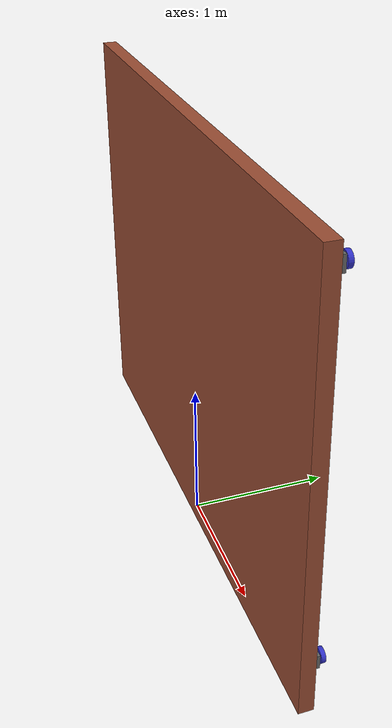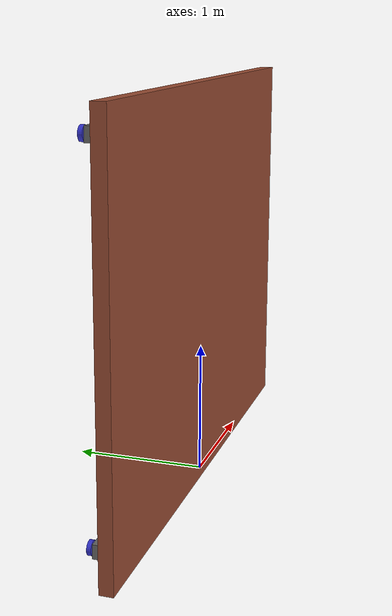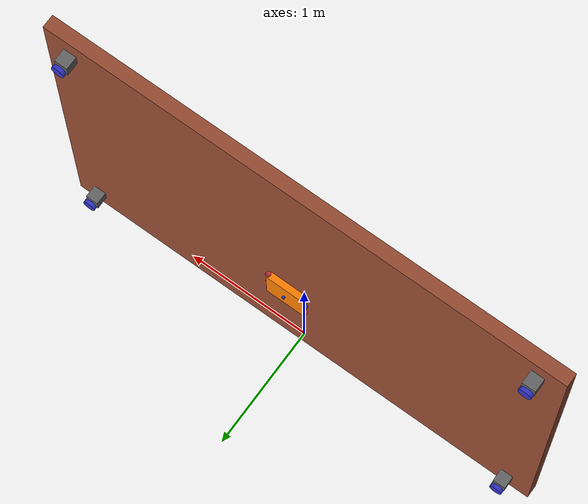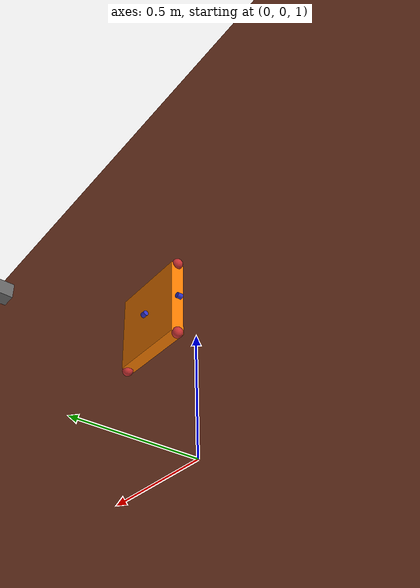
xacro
<?xml version="1.0"?>
<robot name="cable_robot" xmlns:xacro="http://www.ros.org/wiki/xacro">

  <!-- ============ PARAMETERS ============ -->
  <xacro:property name="wall_width" value="4.0"/>
  <xacro:property name="wall_height" value="3.0"/>
  <xacro:property name="wall_thickness" value="0.1"/>

  <xacro:property name="pulley_radius" value="0.05"/>
  <xacro:property name="pulley_thickness" value="0.03"/>
  <xacro:property name="mount_size" value="0.1"/>

  <xacro:property name="platform_size" value="0.3"/>
  <xacro:property name="platform_thickness" value="0.05"/>
  <xacro:property name="platform_mass" value="2.0"/>

  <xacro:property name="cable_radius" value="0.005"/>

  <!-- Pulley corner offsets from wall center -->
  <xacro:property name="pulley_x_offset" value="${wall_width/2 - 0.2}"/>
  <xacro:property name="pulley_z_offset" value="${wall_height/2 - 0.2}"/>

  <!-- Platform corner offsets -->
  <xacro:property name="platform_corner" value="${platform_size/2}"/>

  <!-- ============ WORLD & BASE ============ -->
  <link name="world"/>

  <link name="base_link">
    <inertial>
      <mass value="0.001"/>
      <inertia ixx="0.0001" ixy="0.0" ixz="0.0" iyy="0.0001" iyz="0.0" izz="0.0001"/>
    </inertial>
  </link>

  <joint name="world_joint" type="fixed">
    <parent link="world"/>
    <child link="base_link"/>
    <origin xyz="0 0 0" rpy="0 0 0"/>
  </joint>

  <!-- ============ WALL ============ -->
  <link name="wall">
    <visual>
      <geometry>
        <box size="${wall_width} ${wall_thickness} ${wall_height}"/>
      </geometry>
      <material name="brick">
        <color rgba="0.6 0.3 0.2 1"/>
      </material>
    </visual>
    <collision>
      <geometry>
        <box size="${wall_width} ${wall_thickness} ${wall_height}"/>
      </geometry>
    </collision>
    <inertial>
      <mass value="1000.0"/>
      <inertia ixx="1000" ixy="0.0" ixz="0.0" iyy="1000" iyz="0.0" izz="1000"/>
    </inertial>
  </link>

  <joint name="wall_joint" type="fixed">
    <parent link="base_link"/>
    <child link="wall"/>
    <origin xyz="0 0 ${wall_height/2}" rpy="0 0 0"/>
  </joint>

  <gazebo reference="wall">
    <material>Gazebo/Bricks</material>
  </gazebo>

  <!-- ============ PULLEY MACRO ============ -->
  <xacro:macro name="pulley_with_winch" params="name px pz">
    <!-- Pulley mount -->
    <link name="${name}_mount">
      <visual>
        <geometry>
          <box size="${mount_size} ${mount_size} ${mount_size}"/>
        </geometry>
        <material name="gray">
          <color rgba="0.4 0.4 0.4 1"/>
        </material>
      </visual>
      <collision>
        <geometry>
          <box size="${mount_size} ${mount_size} ${mount_size}"/>
        </geometry>
      </collision>
      <inertial>
        <mass value="1.0"/>
        <inertia ixx="0.01" ixy="0.0" ixz="0.0" iyy="0.01" iyz="0.0" izz="0.01"/>
      </inertial>
    </link>

    <joint name="${name}_mount_joint" type="fixed">
      <parent link="wall"/>
      <child link="${name}_mount"/>
      <origin xyz="${px} ${wall_thickness/2 + mount_size/2} ${pz}" rpy="0 0 0"/>
    </joint>

    <!-- Pulley drum (rotating) -->
    <link name="${name}_drum">
      <visual>
        <geometry>
          <cylinder radius="${pulley_radius}" length="${pulley_thickness}"/>
        </geometry>
        <material name="blue">
          <color rgba="0.2 0.2 0.8 1"/>
        </material>
      </visual>
      <collision>
        <geometry>
          <cylinder radius="${pulley_radius}" length="${pulley_thickness}"/>
        </geometry>
      </collision>
      <inertial>
        <mass value="0.2"/>
        <inertia ixx="0.0005" ixy="0.0" ixz="0.0" iyy="0.0005" iyz="0.0" izz="0.00025"/>
      </inertial>
    </link>

    <joint name="${name}_motor_joint" type="continuous">
      <parent link="${name}_mount"/>
      <child link="${name}_drum"/>
      <origin xyz="0 ${mount_size/2 + pulley_thickness/2 + 0.01} 0" rpy="${pi/2} 0 0"/>
      <axis xyz="0 0 1"/>
      <limit effort="50.0" velocity="20.0"/>
      <dynamics damping="0.5" friction="0.1"/>
    </joint>

    <gazebo reference="${name}_mount">
      <material>Gazebo/Grey</material>
    </gazebo>
    <gazebo reference="${name}_drum">
      <material>Gazebo/Blue</material>
    </gazebo>
  </xacro:macro>

  <!-- ============ CREATE 4 PULLEYS ============ -->
  <xacro:pulley_with_winch name="tl" px="${-pulley_x_offset}" pz="${pulley_z_offset}"/>
  <xacro:pulley_with_winch name="tr" px="${pulley_x_offset}" pz="${pulley_z_offset}"/>
  <xacro:pulley_with_winch name="bl" px="${-pulley_x_offset}" pz="${-pulley_z_offset}"/>
  <xacro:pulley_with_winch name="br" px="${pulley_x_offset}" pz="${-pulley_z_offset}"/>

  <!-- ============ SUSPENDED PLATFORM ============ -->
  <!-- Platform moves freely in XZ plane (on the wall surface) -->
  <!-- We use prismatic joints to allow movement -->

  <!-- X-axis rail (horizontal movement) -->
  <link name="x_rail">
    <inertial>
      <mass value="0.001"/>
      <inertia ixx="0.0001" ixy="0.0" ixz="0.0" iyy="0.0001" iyz="0.0" izz="0.0001"/>
    </inertial>
  </link>

  <joint name="platform_x_joint" type="prismatic">
    <parent link="base_link"/>
    <child link="x_rail"/>
    <origin xyz="0 0.2 ${wall_height/2}" rpy="0 0 0"/>
    <axis xyz="1 0 0"/>
    <limit lower="${-wall_width/2 + 0.3}" upper="${wall_width/2 - 0.3}" effort="1000" velocity="2"/>
    <dynamics damping="5.0"/>
  </joint>

  <!-- Z-axis rail (vertical movement) -->
  <link name="z_rail">
    <inertial>
      <mass value="0.001"/>
      <inertia ixx="0.0001" ixy="0.0" ixz="0.0" iyy="0.0001" iyz="0.0" izz="0.0001"/>
    </inertial>
  </link>

  <joint name="platform_z_joint" type="prismatic">
    <parent link="x_rail"/>
    <child link="z_rail"/>
    <origin xyz="0 0 0" rpy="0 0 0"/>
    <axis xyz="0 0 1"/>
    <limit lower="${-wall_height/2 + 0.3}" upper="${wall_height/2 - 0.3}" effort="1000" velocity="2"/>
    <dynamics damping="5.0"/>
  </joint>

  <!-- The actual platform -->
  <link name="platform">
    <visual>
      <geometry>
        <box size="${platform_size} ${platform_thickness} ${platform_size}"/>
      </geometry>
      <material name="orange">
        <color rgba="1.0 0.5 0.0 1"/>
      </material>
    </visual>
    <collision>
      <geometry>
        <box size="${platform_size} ${platform_thickness} ${platform_size}"/>
      </geometry>
    </collision>
    <inertial>
      <mass value="${platform_mass}"/>
      <origin xyz="0 0 0"/>
      <inertia ixx="0.03" ixy="0.0" ixz="0.0" iyy="0.03" iyz="0.0" izz="0.03"/>
    </inertial>
  </link>

  <joint name="platform_attach_joint" type="fixed">
    <parent link="z_rail"/>
    <child link="platform"/>
    <origin xyz="0 0 0" rpy="0 0 0"/>
  </joint>

  <!-- Platform attachment corners (visual markers for cable attachment) -->
  <xacro:macro name="platform_corner_marker" params="name cx cz">
    <link name="platform_${name}">
      <visual>
        <geometry>
          <sphere radius="0.02"/>
        </geometry>
        <material name="red">
          <color rgba="0.8 0.2 0.2 1"/>
        </material>
      </visual>
      <inertial>
        <mass value="0.01"/>
        <inertia ixx="0.00001" ixy="0.0" ixz="0.0" iyy="0.00001" iyz="0.0" izz="0.00001"/>
      </inertial>
    </link>
    <joint name="platform_${name}_joint" type="fixed">
      <parent link="platform"/>
      <child link="platform_${name}"/>
      <origin xyz="${cx} 0 ${cz}" rpy="0 0 0"/>
    </joint>
    <gazebo reference="platform_${name}">
      <material>Gazebo/Red</material>
    </gazebo>
  </xacro:macro>

  <xacro:platform_corner_marker name="tl" cx="${-platform_corner}" cz="${platform_corner}"/>
  <xacro:platform_corner_marker name="tr" cx="${platform_corner}" cz="${platform_corner}"/>
  <xacro:platform_corner_marker name="bl" cx="${-platform_corner}" cz="${-platform_corner}"/>
  <xacro:platform_corner_marker name="br" cx="${platform_corner}" cz="${-platform_corner}"/>

  <gazebo reference="platform">
    <material>Gazebo/Orange</material>
    <gravity>true</gravity>
  </gazebo>

  <!-- ============ ULTRASONIC SENSORS ============ -->

  <xacro:property name="sensor_range_min" value="0.02"/>
  <xacro:property name="sensor_range_max" value="4.0"/>
  <xacro:property name="sensor_fov" value="0.26"/>  <!-- ~15 degrees in radians -->

  <!-- Ultrasonic sensor macro -->
  <xacro:macro name="ultrasonic_sensor" params="name parent x y z roll pitch yaw">
    <link name="${name}_link">
      <visual>
        <geometry>
          <cylinder radius="0.01" length="0.02"/>
        </geometry>
        <material name="blue">
          <color rgba="0.2 0.2 0.8 1"/>
        </material>
      </visual>
      <collision>
        <geometry>
          <cylinder radius="0.01" length="0.02"/>
        </geometry>
      </collision>
      <inertial>
        <mass value="0.01"/>
        <inertia ixx="0.000001" ixy="0.0" ixz="0.0" iyy="0.000001" iyz="0.0" izz="0.000001"/>
      </inertial>
    </link>

    <joint name="${name}_joint" type="fixed">
      <parent link="${parent}"/>
      <child link="${name}_link"/>
      <origin xyz="${x} ${y} ${z}" rpy="${roll} ${pitch} ${yaw}"/>
    </joint>

    <gazebo reference="${name}_link">
      <material>Gazebo/Blue</material>
      <sensor type="ray" name="${name}">
        <pose>0 0 0 0 0 0</pose>
        <update_rate>10</update_rate>
        <visualize>true</visualize>
        <ray>
          <scan>
            <horizontal>
              <samples>5</samples>
              <resolution>1</resolution>
              <min_angle>${-sensor_fov/2}</min_angle>
              <max_angle>${sensor_fov/2}</max_angle>
            </horizontal>
            <vertical>
              <samples>5</samples>
              <resolution>1</resolution>
              <min_angle>${-sensor_fov/2}</min_angle>
              <max_angle>${sensor_fov/2}</max_angle>
            </vertical>
          </scan>
          <range>
            <min>${sensor_range_min}</min>
            <max>${sensor_range_max}</max>
            <resolution>0.01</resolution>
          </range>
          <noise>
            <type>gaussian</type>
            <mean>0.0</mean>
            <stddev>0.01</stddev>
          </noise>
        </ray>
        <plugin name="${name}_plugin" filename="libgazebo_ros_ray_sensor.so">
          <ros>
            <namespace>/ultrasonic</namespace>
            <remapping>~/out:=${name}</remapping>
          </ros>
          <output_type>sensor_msgs/Range</output_type>
          <radiation_type>ultrasound</radiation_type>
          <frame_name>${name}_link</frame_name>
        </plugin>
      </sensor>
    </gazebo>
  </xacro:macro>

  <!-- Mount sensors on platform edges, pointing outward -->
  <!-- Front sensor (positive Y direction - away from wall) -->
  <xacro:ultrasonic_sensor name="ultrasonic_front" parent="platform"
    x="0" y="${platform_thickness/2 + 0.01}" z="0"
    roll="0" pitch="${-pi/2}" yaw="0"/>

  <!-- Back sensor (negative Y direction - toward wall) -->
  <xacro:ultrasonic_sensor name="ultrasonic_back" parent="platform"
    x="0" y="${-platform_thickness/2 - 0.01}" z="0"
    roll="0" pitch="${pi/2}" yaw="0"/>

  <!-- Left sensor (negative X direction) -->
  <xacro:ultrasonic_sensor name="ultrasonic_left" parent="platform"
    x="${-platform_size/2 - 0.01}" y="0" z="0"
    roll="0" pitch="${-pi/2}" yaw="${-pi/2}"/>

  <!-- Right sensor (positive X direction) -->
  <xacro:ultrasonic_sensor name="ultrasonic_right" parent="platform"
    x="${platform_size/2 + 0.01}" y="0" z="0"
    roll="0" pitch="${-pi/2}" yaw="${pi/2}"/>

  <!-- ============ ROS 2 CONTROL ============ -->
  <ros2_control name="GazeboSystem" type="system">
    <hardware>
      <plugin>gazebo_ros2_control/GazeboSystem</plugin>
    </hardware>
    <joint name="tl_motor_joint">
      <command_interface name="velocity">
        <param name="min">-10</param>
        <param name="max">10</param>
      </command_interface>
      <state_interface name="position"/>
      <state_interface name="velocity"/>
      <state_interface name="effort"/>
    </joint>
    <joint name="tr_motor_joint">
      <command_interface name="velocity">
        <param name="min">-10</param>
        <param name="max">10</param>
      </command_interface>
      <state_interface name="position"/>
      <state_interface name="velocity"/>
      <state_interface name="effort"/>
    </joint>
    <joint name="bl_motor_joint">
      <command_interface name="velocity">
        <param name="min">-10</param>
        <param name="max">10</param>
      </command_interface>
      <state_interface name="position"/>
      <state_interface name="velocity"/>
      <state_interface name="effort"/>
    </joint>
    <joint name="br_motor_joint">
      <command_interface name="velocity">
        <param name="min">-10</param>
        <param name="max">10</param>
      </command_interface>
      <state_interface name="position"/>
      <state_interface name="velocity"/>
      <state_interface name="effort"/>
    </joint>
    <!-- Platform position joints (controlled by cable forces) -->
    <joint name="platform_x_joint">
      <command_interface name="effort">
        <param name="min">-500</param>
        <param name="max">500</param>
      </command_interface>
      <state_interface name="position"/>
      <state_interface name="velocity"/>
      <state_interface name="effort"/>
    </joint>
    <joint name="platform_z_joint">
      <command_interface name="effort">
        <param name="min">-500</param>
        <param name="max">500</param>
      </command_interface>
      <state_interface name="position"/>
      <state_interface name="velocity"/>
      <state_interface name="effort"/>
    </joint>
  </ros2_control>

  <!-- Gazebo ROS2 Control Plugin -->
  <gazebo>
    <plugin filename="libgazebo_ros2_control.so" name="gazebo_ros2_control">
      <robot_param>robot_description</robot_param>
      <robot_param_node>robot_state_publisher</robot_param_node>
      <parameters>$(find pulley_package)/config/cable_control.yaml</parameters>
    </plugin>
  </gazebo>

</robot>
